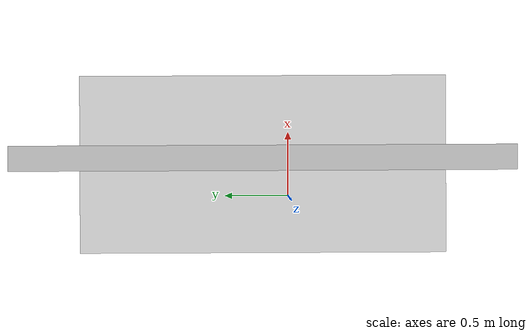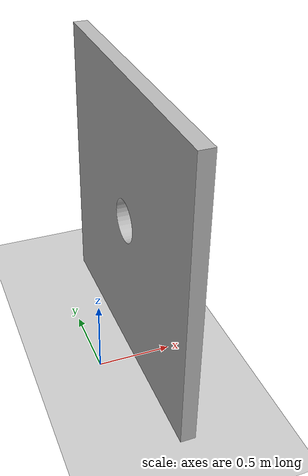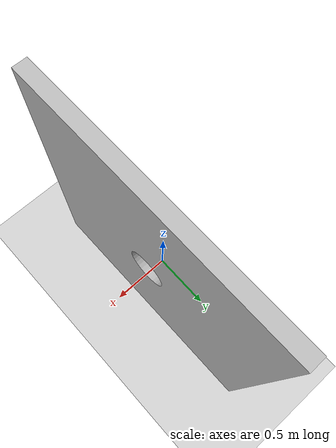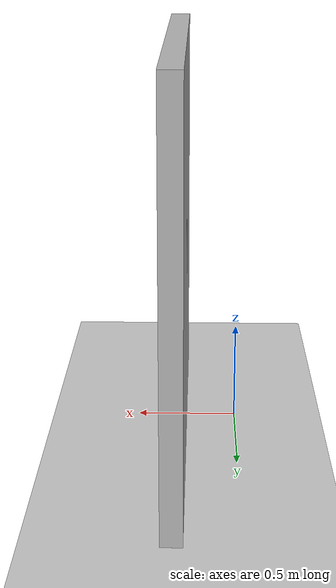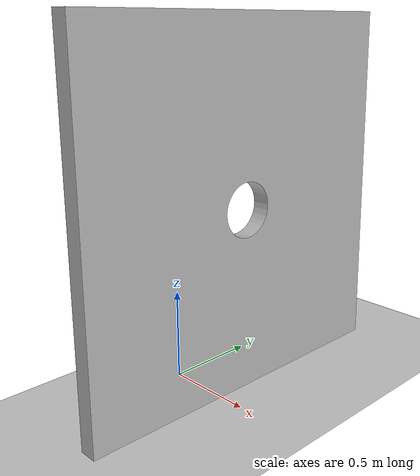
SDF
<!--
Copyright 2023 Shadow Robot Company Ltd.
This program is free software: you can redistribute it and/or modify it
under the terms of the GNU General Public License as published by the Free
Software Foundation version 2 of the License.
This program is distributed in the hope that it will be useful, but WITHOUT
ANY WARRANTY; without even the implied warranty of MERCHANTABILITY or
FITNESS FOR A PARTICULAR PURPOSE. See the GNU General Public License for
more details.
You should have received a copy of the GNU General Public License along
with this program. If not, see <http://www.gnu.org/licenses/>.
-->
<?xml version="1.0" ?>

<sdf version="1.4">
  <world name="default">
    <include>
      <uri>model://ground_plane</uri>
    </include>
    <include>
      <uri>model://sun</uri>
    </include>
    <include>
      <uri>model://wall_with_hole</uri>
      <static>true</static>
      <name>wall_with_hole</name>
      <pose>0.3 0.20 0.0 0 0 0</pose>
    </include>
      <physics type="ode">
      <gravity>0.000000 0.000000 -9.810000</gravity>
      <ode>
        <solver>
          <type>quick</type>
          <iters>100</iters>
          <precon_iters>0</precon_iters>
          <sor>1.000000</sor>
        </solver>
        <constraints>
          <cfm>0.000000</cfm>
          <erp>0.200000</erp>
          <contact_max_correcting_vel>0.000000</contact_max_correcting_vel>
          <contact_surface_layer>0.00000</contact_surface_layer>
        </constraints>
      </ode>
      <real_time_factor>1.0</real_time_factor>
      <max_step_size>0.001000</max_step_size>
    </physics>

  </world>
</sdf>

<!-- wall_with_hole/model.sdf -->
<sdf version="1.4">
  <model name="wall_with_hole">
    <static>true</static>
    <link name="link">
      <inertial>
        <mass>20</mass>
      </inertial>
      <collision name="collision">
        <pose>0.0 0.0 0.0 0 0.0 0.0</pose>
        <geometry>
          <mesh>
            <uri>model://wall_with_hole/meshes/wall_with_hole.stl</uri>
          </mesh>
        </geometry>
      </collision>
      <visual name="visual">
        <pose>0.0 0.0 0.0 0 0.0 0.0</pose>
        <geometry>
          <mesh>
            <uri>model://wall_with_hole/meshes/wall_with_hole.stl</uri>
          </mesh>
        </geometry>
      </visual>
    </link>
  </model>
</sdf>
